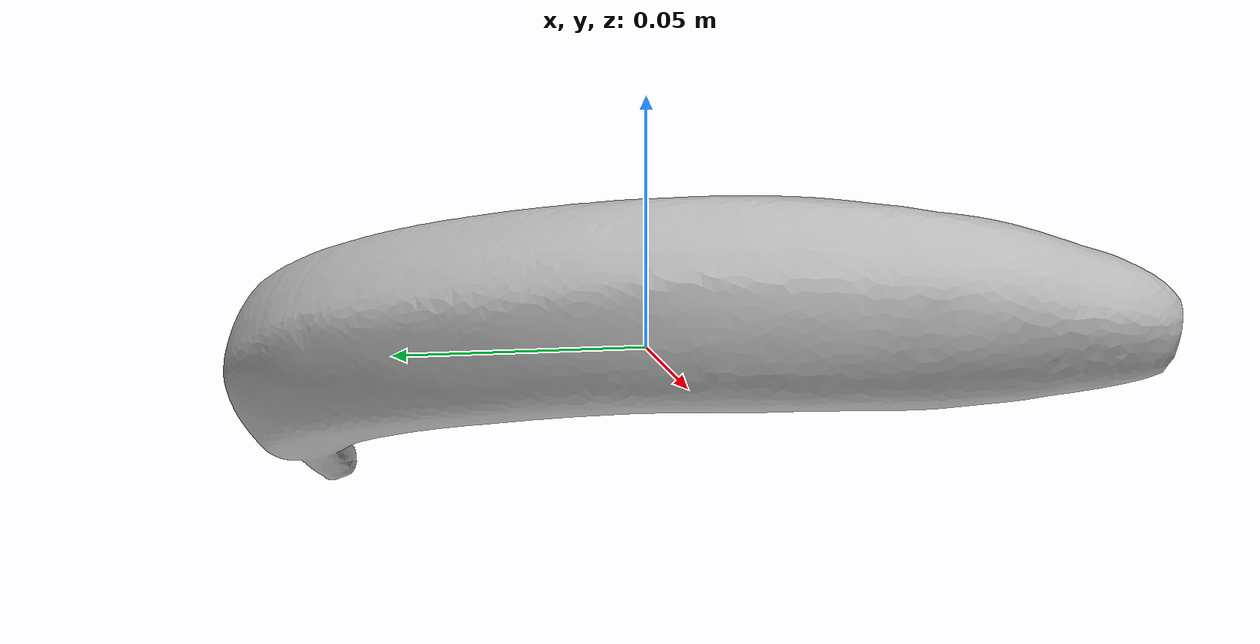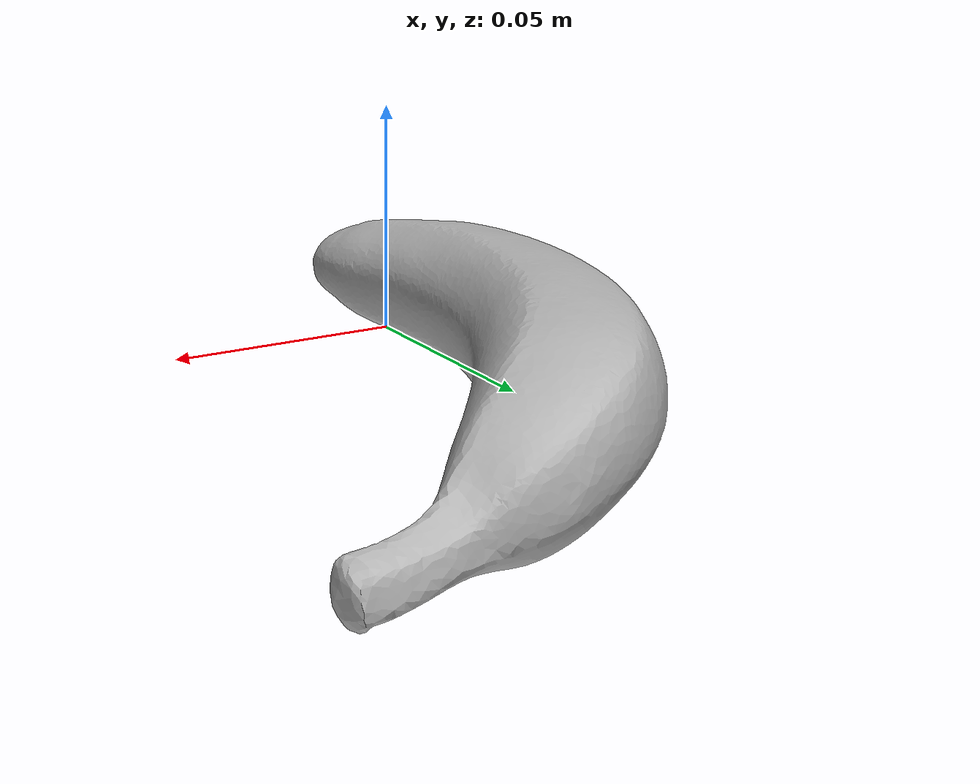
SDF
<?xml version="1.0" ?>
<sdf version="1.7">
<!--
This SDF file was automatically generated using a template modified
and authored by Jinjian Li. The moment of interia is not supposed to be changed.
-->
    <model name="obj_000010">
      <pose>0.0 0.0 0.0 0.0 0.0 0.0</pose>
      <link name="link">
        <inertial>
          <inertia>
           <ixx>0.0005613433059653176</ixx>
           <ixy>-0.00016581721734724758</ixy>
           <ixz>3.959266160945897e-06</ixz>
           <iyy>0.00011597674433185677</iyy>
           <iyz>-3.340689555196661e-06</iyz>
           <izz>0.0006389185029451161</izz>
          </inertia>
          <mass>0.2570827989313012</mass>
        </inertial>
        <collision name="collision">
          <geometry>
            <mesh>
             <uri>obj_000010.obj</uri>
             <scale>1 1 1</scale>
            </mesh>
          </geometry>
        </collision>

        <visual name="visual">
          <geometry>
            <mesh>
             <uri>obj_000010.obj</uri>
             <scale>1 1 1</scale>
            </mesh>
          </geometry>
        </visual>
      </link>
    </model>
</sdf>
